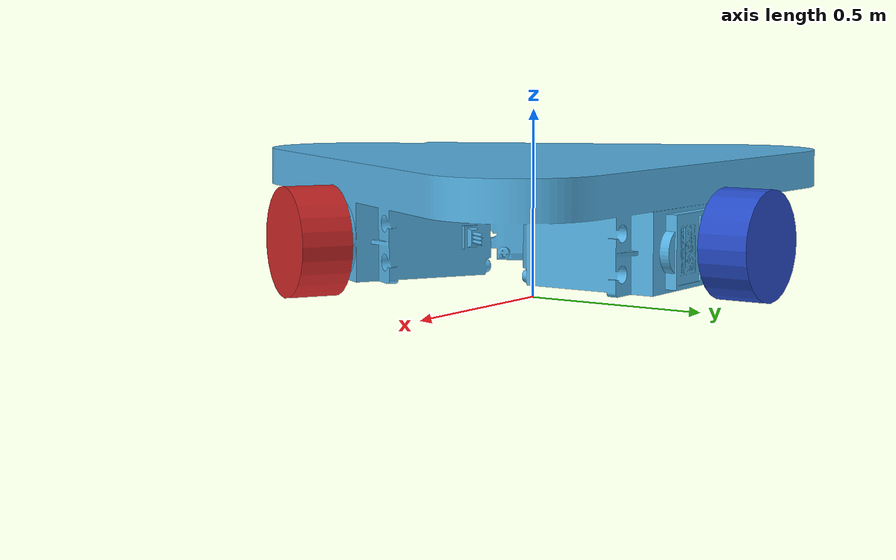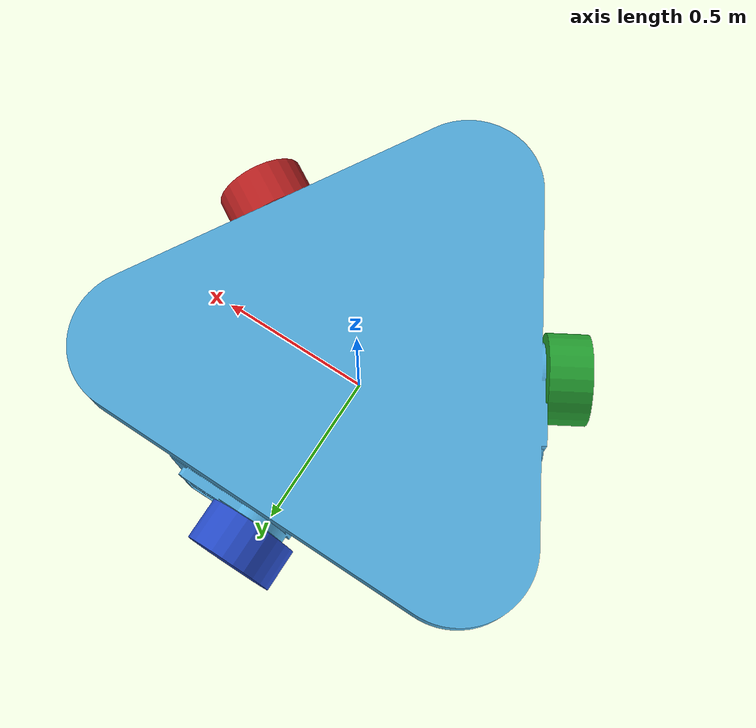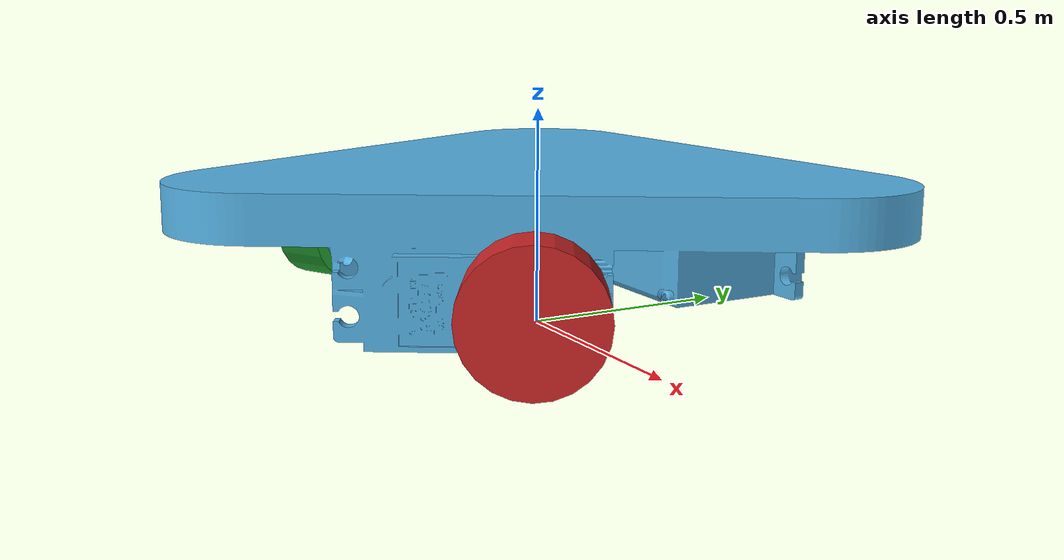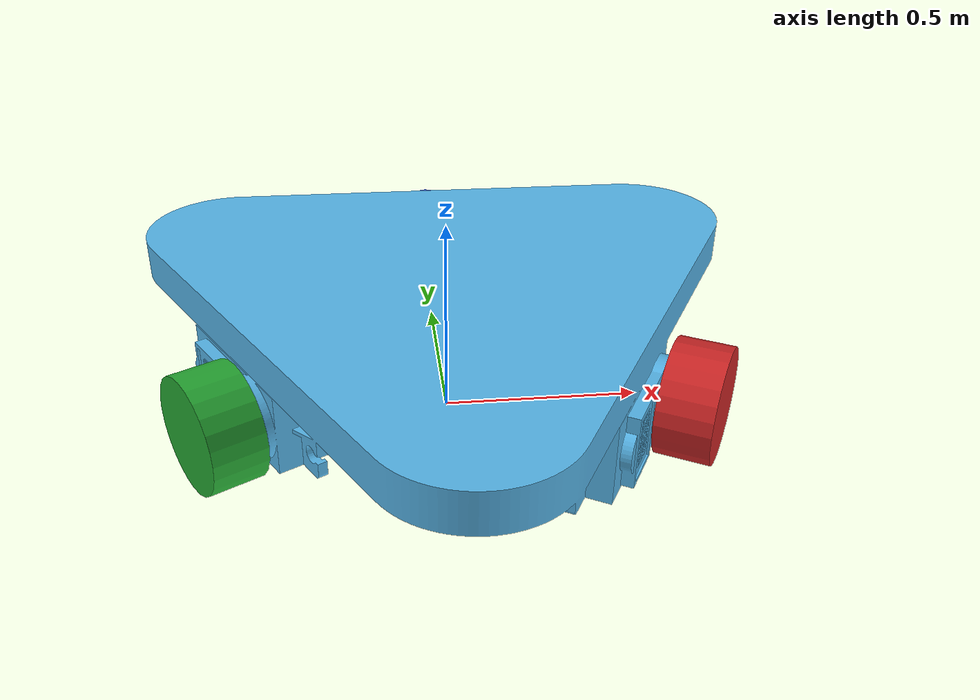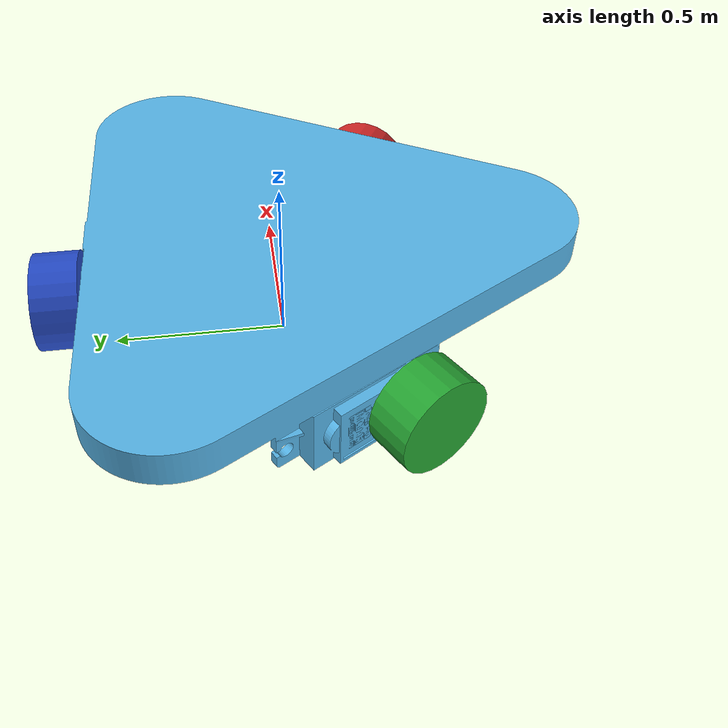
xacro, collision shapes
<?xml version="1.0" ?>

<robot name="hb_bot" xmlns:xacro="http://www.ros.org/wiki/xacro">
    <xacro:include filename="/home/g10/eyrc_hb/hb_task1b_ws/src/hb_task_1b/urdf/materials.xacro"/>

    <link name ="footprint_link">
    </link>
    <joint name="footprint_joint" type="fixed">
         <origin
                xyz="0.0 0.0 0.0"
                rpy="0 0 0" />
        <parent link="footprint_link"/>
        <child link="base_link"/>

    </joint>

    <!--Base link-->
    <link name ="base_link">
        <inertial>
            <origin xyz="0 0.0 0.28" rpy="0 0 0" />
            <mass
                value="0.28" />
            <inertia
                ixx="0.011666666666667"
                ixy="0"
                ixz="0"
                iyy="0.011666666666667"
                iyz="0"
                izz="0.011666666666667" />

        </inertial>
        <collision name="collision">
            <origin
                xyz="0 0.0 0.28"
                rpy="0 0 0" />

            <geometry>
                <mesh filename ="/home/g10/eyrc_hb/hb_task1b_ws/src/hb_task_1b/meshes/base.dae" scale="0.01  0.01 0.01"/>

            </geometry>
        </collision>
        <visual>
            <origin
                xyz="0 0 0.28"
                rpy="0 0 0" />
            <geometry>
                <mesh
                filename ="/home/g10/eyrc_hb/hb_task1b_ws/src/hb_task_1b/meshes/base.dae" scale="0.01  0.01 0.01"/>
            </geometry>
        </visual>
    </link>

    <!-- right_wheel -->

    <link name ="right_wheel">
        <inertial>
            <origin
                xyz="0 -0.05 0.0"
                rpy="1.57 0 0" />
            <mass
                value="0.060" />
            <inertia
                ixx="1.825e-4"
                ixy="0"
                ixz="0.00000000"
                iyy="1.825e-4"
                iyz="0"
                izz="1.825e-4" />
        </inertial>
            <collision name="R_collision">
            <origin
                xyz="0 -0.05 0.0"
                rpy="1.57 0 0" />
            <geometry>
            <cylinder length="0.13" radius="0.14"/>
            </geometry>
        </collision>

        <visual>
            <origin
            xyz="0.0 0.0 0.0"
            rpy="0.0 0.0 0.0" />
            <geometry>
                <mesh filename ="/home/g10/eyrc_hb/hb_task1b_ws/src/hb_task_1b/meshes/wheel.stl" scale="5 5 5"/>
            </geometry>
        </visual>
    </link>

    <!-- Joint -->
    <joint name ="right_wheel_joint" type="continuous" >
        <origin
                xyz="0.0 0.68 0.18"
                rpy="0 0 0" />
        <parent link="base_link"/>
        <child link="right_wheel"/>
        <axis xyz="0.0 1.0 0.0"/>
         <limit
            effort="5"
            velocity="5" />
    </joint>

    <!-- material properties -->
    <gazebo reference="right_wheel">
        <material>Gazebo/Blue</material>
    </gazebo>

    <!-- left_wheel -->

    <link name ="left_wheel">
        <inertial>
            <origin
                xyz="0 -0.05 0.0"
                rpy="1.57 0 0" />
            <mass
                value="0.060" />
            <inertia
                ixx="1.825e-4"
                ixy="0"
                ixz="0.00000000"
                iyy="1.825e-4"
                iyz="0"
                izz="1.825e-4" />
        </inertial>
            <collision name="l_collision">
            <origin
                xyz="0 -0.05 0.0"
                rpy="1.57 0 0" />
            <geometry>
            <cylinder length="0.13" radius="0.14"/>
            </geometry>
        </collision>

        <visual>
            <origin
            xyz="0.0 0.0 0.0"
            rpy="0.0 0.0 0.0" />
            <geometry>
                <mesh filename ="/home/g10/eyrc_hb/hb_task1b_ws/src/hb_task_1b/meshes/wheel.stl" scale="5 5 5"/>
            </geometry>
        </visual>
    </link>

    <!-- Joint -->
    <joint name ="left_wheel_joint" type="continuous" >
        <origin
                xyz="0.589 -0.34 0.18"
                rpy="3.14 0 1.047" />
        <parent link="base_link"/>
        <child link="left_wheel"/>
        <axis xyz="0.0 1.0 0.0"/>
         <limit
            effort="5"
            velocity="5" />
    </joint>

    <!-- material properties -->
    <gazebo reference="left_wheel">
        <material>Gazebo/Red</material>
    </gazebo>

    <!-- rear_wheel -->

    <link name ="rear_wheel">
        <inertial>
            <origin
                xyz="0 -0.05 0.0"
                rpy="1.57 0 0" />
            <mass
                value="0.060" />
            <inertia
                ixx="1.825e-4"
                ixy="0"
                ixz="0.00000000"
                iyy="1.825e-4"
                iyz="0"
                izz="1.825e-4" />
        </inertial>
            <collision name="Re_collision">
            <origin
                xyz="0 -0.05 0.0"
                rpy="1.57 0 0" />
            <geometry>
            <cylinder length="0.13" radius="0.14"/>
            </geometry>
        </collision>

        <visual>
            <origin
            xyz="0.0 0.0 0.0"
            rpy="0.0 0.0 0.0" />
            <geometry>
                <mesh filename ="/home/g10/eyrc_hb/hb_task1b_ws/src/hb_task_1b/meshes/wheel.stl" scale="5 5 5"/>
            </geometry>
        </visual>
    </link>

    <!-- Joint -->
    <joint name ="rear_wheel_joint" type="continuous" >
        <origin
                xyz="-0.589 -0.34 0.18"
                rpy="3.14 0 -1.047" />
        <parent link="base_link"/>
        <child link="rear_wheel"/>
        <axis xyz="0.0 1.0 0.0"/>
         <limit
            effort="5"
            velocity="5" />
    </joint>

    <!-- material properties -->
    <gazebo reference="rear_wheel">
        <material>Gazebo/Green</material>
    </gazebo>

<!-- ros_control plugin -->

    <gazebo>
        <plugin name="object_controller" filename="libgazebo_ros_planar_move.so">
            <commandTopic>cmd_vel</commandTopic>
            <odometryTopic>odom</odometryTopic>
            <odometryFrame>odom</odometryFrame>
            <odometryRate>20.0</odometryRate>
            <robotBaseFrame>chasis</robotBaseFrame>
        </plugin>
    </gazebo>
</robot>
